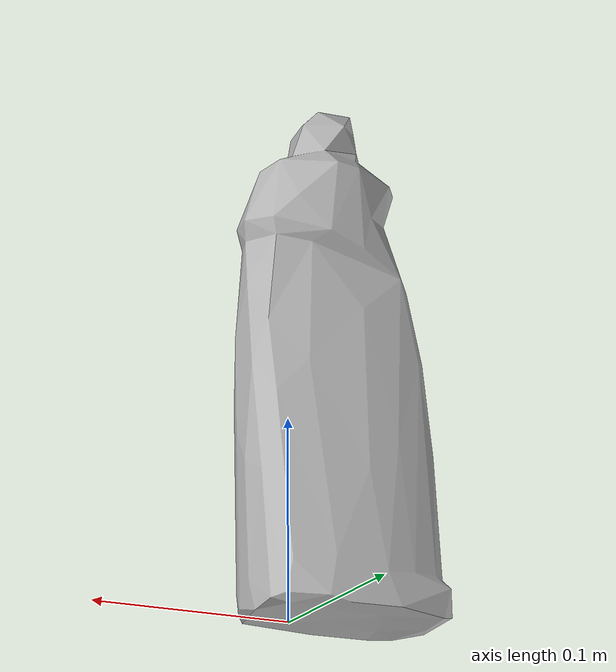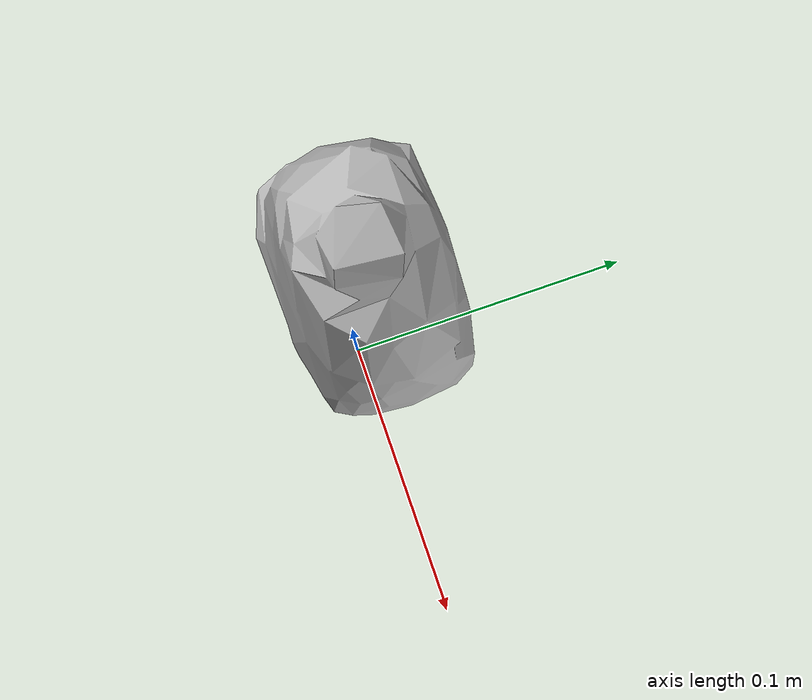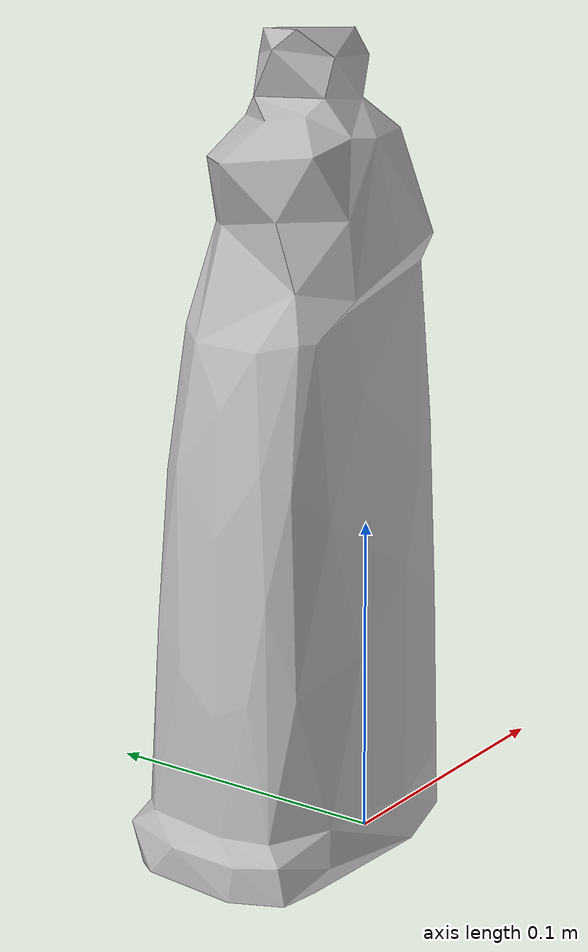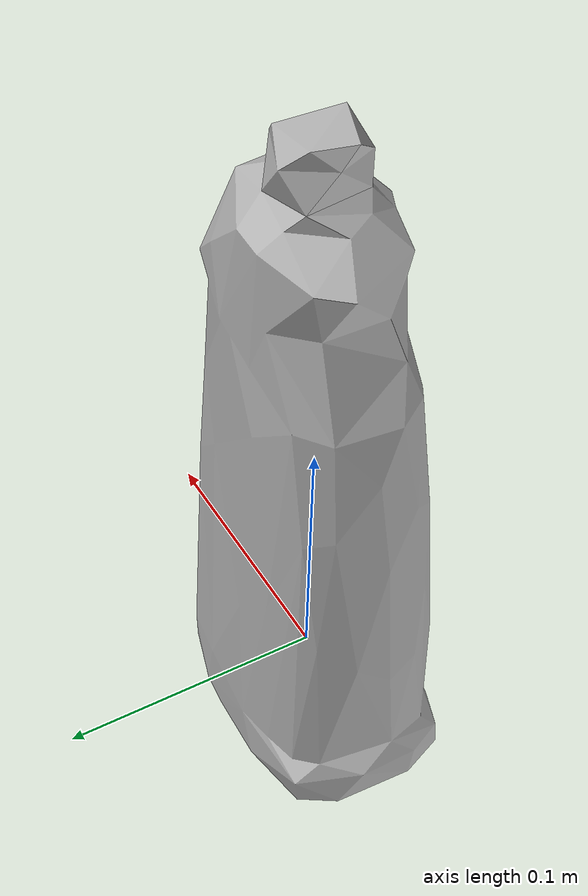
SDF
<?xml version='1.0'?>
<sdf version="1.4">
  <model name="021_bleach_cleanser">
    <static>false</static>
    <link name="link">
      <inertial>
        <pose>-0.017506516207390115 0.011594340650731677 0.10253327825335425 -3.0710624820276498 -7.501559639552201e-05 1.5628113507939794</pose>
        <mass>0.10674716293121195</mass>
        <inertia>
          <ixx>0.0005209135118920276</ixx>
          <ixy>-5.155967353235087e-21</ixy>
          <ixz>3.096415728766413e-19</ixz>
          <iyy>0.0004880598245291493</iyy>
          <iyz>2.4163223057743866e-21</iyz>
          <izz>8.70777938151563e-05</izz>
        </inertia>
      </inertial>
      <collision name="collision">
        <geometry>
          <mesh>
            <!-- Use a downsampled mesh for collisions -->
            <uri>model:///021_bleach_cleanser/021_bleach_cleanser_250_collision.stl</uri>
	        </mesh>
        </geometry>
        <surface>
      </surface>
      </collision>
      <visual name="visual">
        <geometry>
          <mesh>
            <uri>model:///021_bleach_cleanser/textured.obj</uri>
	        </mesh>
        </geometry>
        <material>
          <script>
            <uri>model:///021_bleach_cleanser/021_bleach_cleanser.material</uri>
            <name>021_bleach_cleanser</name>
          </script>
        </material>
      </visual>
    </link>
  </model>
</sdf>
